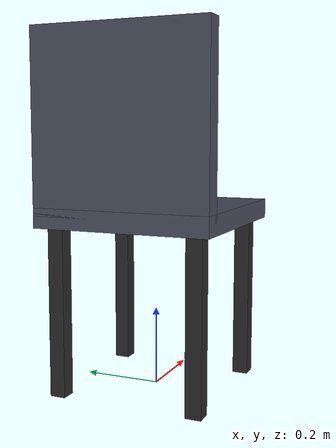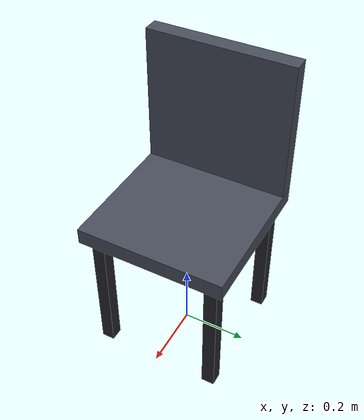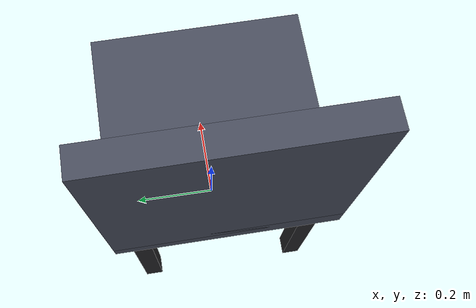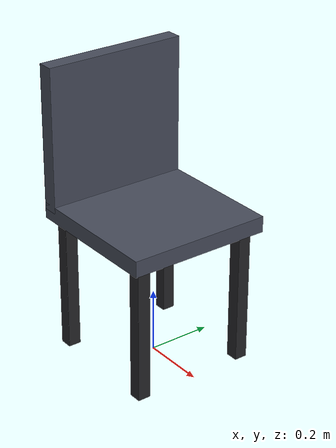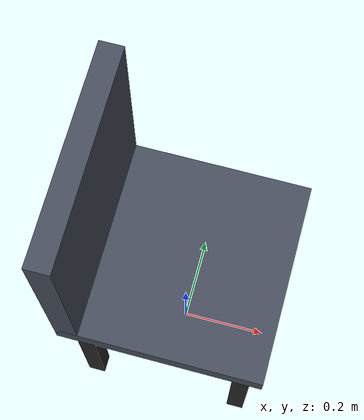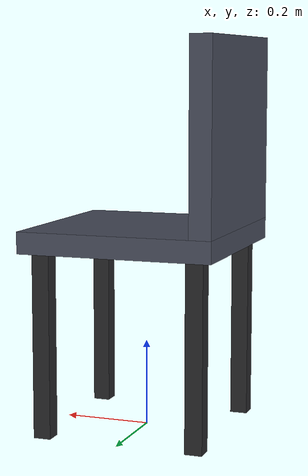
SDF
<?xml version="1.0" ?>
<sdf version="1.6">
  <model name="chair">
    <static>true</static>

    <link name="chair_link">
      <!-- ===== R5 SIMPLIFIED COLLISION (single box) ===== -->
      <collision name="chair_col">
        <pose>0 0 0.45 0 0 0</pose>
        <geometry>
          <box><size>0.45 0.45 0.90</size></box>
        </geometry>
        <surface>
          <friction><ode><mu>0.7</mu><mu2>0.7</mu2></ode></friction>
        </surface>
      </collision>

      <!-- ===== DETAILED VISUALS ===== -->
      <!-- Seat cushion -->
      <visual name="seat_vis">
        <pose>0 0 0.45 0 0 0</pose>
        <geometry><box><size>0.45 0.45 0.05</size></box></geometry>
        <material>
          <ambient>0.20 0.22 0.26 1</ambient>
          <diffuse>0.28 0.30 0.36 1</diffuse>
          <specular>0.10 0.10 0.12 1</specular>
        </material>
      </visual>

      <!-- Backrest (on -X side) -->
      <visual name="back_vis">
        <pose>-0.20 0 0.68 0 0 0</pose>
        <geometry><box><size>0.05 0.45 0.45</size></box></geometry>
        <material>
          <ambient>0.20 0.22 0.26 1</ambient>
          <diffuse>0.28 0.30 0.36 1</diffuse>
          <specular>0.10 0.10 0.12 1</specular>
        </material>
      </visual>

      <!-- Four legs (charcoal metal, high specular) -->
      <visual name="leg_fl">
        <pose>0.18 0.18 0.215 0 0 0</pose>
        <geometry><box><size>0.04 0.04 0.43</size></box></geometry>
        <material><ambient>0.10 0.10 0.11 1</ambient><diffuse>0.15 0.15 0.16 1</diffuse><specular>0.30 0.30 0.32 1</specular></material>
      </visual>
      <visual name="leg_fr">
        <pose>0.18 -0.18 0.215 0 0 0</pose>
        <geometry><box><size>0.04 0.04 0.43</size></box></geometry>
        <material><ambient>0.10 0.10 0.11 1</ambient><diffuse>0.15 0.15 0.16 1</diffuse><specular>0.30 0.30 0.32 1</specular></material>
      </visual>
      <visual name="leg_bl">
        <pose>-0.18 0.18 0.215 0 0 0</pose>
        <geometry><box><size>0.04 0.04 0.43</size></box></geometry>
        <material><ambient>0.10 0.10 0.11 1</ambient><diffuse>0.15 0.15 0.16 1</diffuse><specular>0.30 0.30 0.32 1</specular></material>
      </visual>
      <visual name="leg_br">
        <pose>-0.18 -0.18 0.215 0 0 0</pose>
        <geometry><box><size>0.04 0.04 0.43</size></box></geometry>
        <material><ambient>0.10 0.10 0.11 1</ambient><diffuse>0.15 0.15 0.16 1</diffuse><specular>0.30 0.30 0.32 1</specular></material>
      </visual>
    </link>
  </model>
</sdf>
